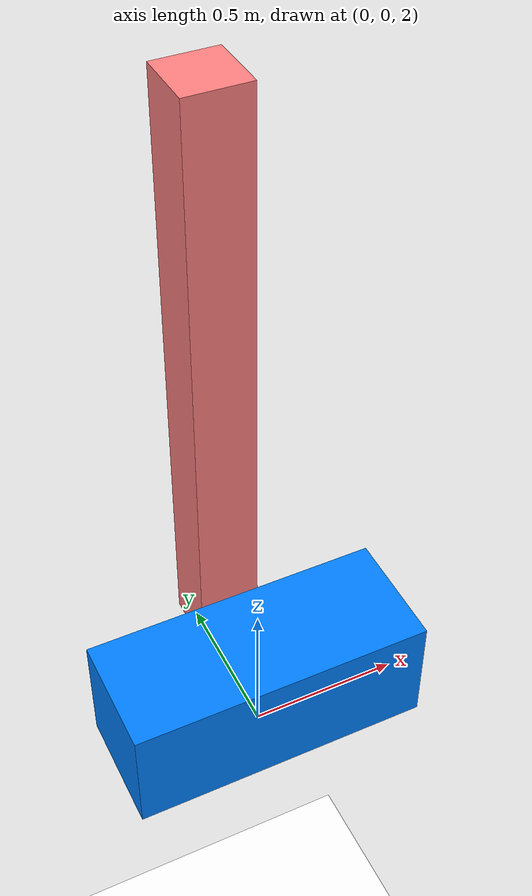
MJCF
<!-- 範例 -->
<mujoco model="simple_box">
	<compiler angle="degree" coordinate="local"/>

	<option timestep="0.002" gravity="0 0 -9.81"/>

	<worldbody>
		<geom name="floor" type="plane" pos="0 0 0" size="10 10 0.1" rgba="10 10 10 0.3" friction="1 0.005 0.001"/>

		<body name="cart" pos="0 0 2.2">
			<joint name="cart_joint" type="slide" axis="1 0 0" range="-5 5" frictionloss="10"/>
			<geom type="box" density="100" size="0.5 0.2 0.2" rgba="0 0.5 1 1"/>

			<body name="pole" pos="0 0.31 1">
				<joint name="pole_joint" type="hinge" pos="0 0 -1" axis="0 1 0" range="-135 135" frictionloss="10"/>
				<geom type="box" density="100" size="0.1 0.1 1" rgba="1 0.5 0.5 1"/>
			</body>
		</body>
	</worldbody>

	<actuator>
		<motor name="cart_motor" joint="cart_joint" ctrlrange="-1000 1000"/>
	</actuator>

	<sensor>
		<jointpos name="cart_pos" joint="cart_joint"/>
		<jointvel name="cart_vel" joint="cart_joint"/>
		<jointactuatorfrc name="cart_tor" joint="cart_joint"/>
		<jointpos name="pole_pos" joint="pole_joint"/>
		<jointvel name="pole_vel" joint="pole_joint"/>
		<jointactuatorfrc name="pole_tor" joint="pole_joint"/>
	</sensor>
</mujoco>
